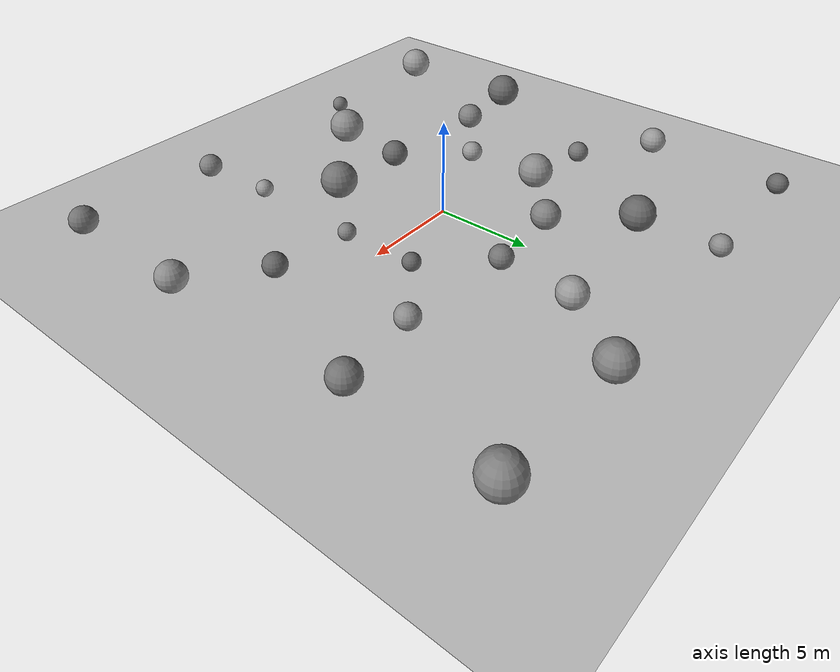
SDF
<?xml version='1.0' encoding='utf-8'?>
<sdf version="1.4">
  <world name="rock_field">
    <!--28 untextured sphere obstacles. Origin and rover spawn area are clear.-->
    <scene>
      <shadows>false</shadows>
    </scene>
    <plugin filename="gz-sim-physics-system" name="gz::sim::systems::Physics" />
    <plugin filename="gz-sim-user-commands-system" name="gz::sim::systems::UserCommands" />
    <plugin filename="gz-sim-scene-broadcaster-system" name="gz::sim::systems::SceneBroadcaster" />
    <plugin filename="gz-sim-sensors-system" name="gz::sim::systems::Sensors">
      <render_engine>ogre2</render_engine>
    </plugin>
    <include>
      <uri>model://sun</uri>
    </include>
    <include>
      <uri>model://ground_plane</uri>
    </include>
    <physics type="dart">
      <max_step_size>0.01</max_step_size>
      <real_time_factor>1</real_time_factor>
      <real_time_update_rate>100</real_time_update_rate>
      <gravity>0 0 -9.81</gravity>
    </physics>
    <model name="sphere_01">
      <static>true</static>
      <pose>4.835 2.003 0.45 0 0 0</pose>
      <link name="sphere">
        <collision name="collision">
          <geometry>
            <sphere>
              <radius>0.45</radius>
            </sphere>
          </geometry>
        </collision>
        <visual name="visual">
          <geometry>
            <sphere>
              <radius>0.45</radius>
            </sphere>
          </geometry>
          <cast_shadows>false</cast_shadows>
          <material>
            <ambient>0.40 0.40 0.40 1</ambient>
            <diffuse>0.40 0.40 0.40 1</diffuse>
            <specular>0 0 0 1</specular>
          </material>
        </visual>
      </link>
    </model>
    <model name="sphere_02">
      <static>true</static>
      <pose>2.108 5.089 0.60 0 0 0</pose>
      <link name="sphere">
        <collision name="collision">
          <geometry>
            <sphere>
              <radius>0.60</radius>
            </sphere>
          </geometry>
        </collision>
        <visual name="visual">
          <geometry>
            <sphere>
              <radius>0.60</radius>
            </sphere>
          </geometry>
          <cast_shadows>false</cast_shadows>
          <material>
            <ambient>0.45 0.45 0.45 1</ambient>
            <diffuse>0.45 0.45 0.45 1</diffuse>
            <specular>0 0 0 1</specular>
          </material>
        </visual>
      </link>
    </model>
    <model name="sphere_03">
      <static>true</static>
      <pose>-1.998 4.824 0.75 0 0 0</pose>
      <link name="sphere">
        <collision name="collision">
          <geometry>
            <sphere>
              <radius>0.75</radius>
            </sphere>
          </geometry>
        </collision>
        <visual name="visual">
          <geometry>
            <sphere>
              <radius>0.75</radius>
            </sphere>
          </geometry>
          <cast_shadows>false</cast_shadows>
          <material>
            <ambient>0.50 0.50 0.50 1</ambient>
            <diffuse>0.50 0.50 0.50 1</diffuse>
            <specular>0 0 0 1</specular>
          </material>
        </visual>
      </link>
    </model>
    <model name="sphere_04">
      <static>true</static>
      <pose>-5.147 2.132 0.90 0 0 0</pose>
      <link name="sphere">
        <collision name="collision">
          <geometry>
            <sphere>
              <radius>0.90</radius>
            </sphere>
          </geometry>
        </collision>
        <visual name="visual">
          <geometry>
            <sphere>
              <radius>0.90</radius>
            </sphere>
          </geometry>
          <cast_shadows>false</cast_shadows>
          <material>
            <ambient>0.55 0.55 0.55 1</ambient>
            <diffuse>0.55 0.55 0.55 1</diffuse>
            <specular>0 0 0 1</specular>
          </material>
        </visual>
      </link>
    </model>
    <model name="sphere_05">
      <static>true</static>
      <pose>-5.265 -2.181 0.55 0 0 0</pose>
      <link name="sphere">
        <collision name="collision">
          <geometry>
            <sphere>
              <radius>0.55</radius>
            </sphere>
          </geometry>
        </collision>
        <visual name="visual">
          <geometry>
            <sphere>
              <radius>0.55</radius>
            </sphere>
          </geometry>
          <cast_shadows>false</cast_shadows>
          <material>
            <ambient>0.60 0.60 0.60 1</ambient>
            <diffuse>0.60 0.60 0.60 1</diffuse>
            <specular>0 0 0 1</specular>
          </material>
        </visual>
      </link>
    </model>
    <model name="sphere_06">
      <static>true</static>
      <pose>-2.167 -5.230 0.70 0 0 0</pose>
      <link name="sphere">
        <collision name="collision">
          <geometry>
            <sphere>
              <radius>0.70</radius>
            </sphere>
          </geometry>
        </collision>
        <visual name="visual">
          <geometry>
            <sphere>
              <radius>0.70</radius>
            </sphere>
          </geometry>
          <cast_shadows>false</cast_shadows>
          <material>
            <ambient>0.40 0.40 0.40 1</ambient>
            <diffuse>0.40 0.40 0.40 1</diffuse>
            <specular>0 0 0 1</specular>
          </material>
        </visual>
      </link>
    </model>
    <model name="sphere_07">
      <static>true</static>
      <pose>2.172 -5.244 0.95 0 0 0</pose>
      <link name="sphere">
        <collision name="collision">
          <geometry>
            <sphere>
              <radius>0.95</radius>
            </sphere>
          </geometry>
        </collision>
        <visual name="visual">
          <geometry>
            <sphere>
              <radius>0.95</radius>
            </sphere>
          </geometry>
          <cast_shadows>false</cast_shadows>
          <material>
            <ambient>0.45 0.45 0.45 1</ambient>
            <diffuse>0.45 0.45 0.45 1</diffuse>
            <specular>0 0 0 1</specular>
          </material>
        </visual>
      </link>
    </model>
    <model name="sphere_08">
      <static>true</static>
      <pose>4.913 -2.035 0.45 0 0 0</pose>
      <link name="sphere">
        <collision name="collision">
          <geometry>
            <sphere>
              <radius>0.45</radius>
            </sphere>
          </geometry>
        </collision>
        <visual name="visual">
          <geometry>
            <sphere>
              <radius>0.45</radius>
            </sphere>
          </geometry>
          <cast_shadows>false</cast_shadows>
          <material>
            <ambient>0.50 0.50 0.50 1</ambient>
            <diffuse>0.50 0.50 0.50 1</diffuse>
            <specular>0 0 0 1</specular>
          </material>
        </visual>
      </link>
    </model>
    <model name="sphere_09">
      <static>true</static>
      <pose>8.031 4.544 0.60 0 0 0</pose>
      <link name="sphere">
        <collision name="collision">
          <geometry>
            <sphere>
              <radius>0.60</radius>
            </sphere>
          </geometry>
        </collision>
        <visual name="visual">
          <geometry>
            <sphere>
              <radius>0.60</radius>
            </sphere>
          </geometry>
          <cast_shadows>false</cast_shadows>
          <material>
            <ambient>0.55 0.55 0.55 1</ambient>
            <diffuse>0.55 0.55 0.55 1</diffuse>
            <specular>0 0 0 1</specular>
          </material>
        </visual>
      </link>
    </model>
    <model name="sphere_10">
      <static>true</static>
      <pose>2.529 9.121 0.75 0 0 0</pose>
      <link name="sphere">
        <collision name="collision">
          <geometry>
            <sphere>
              <radius>0.75</radius>
            </sphere>
          </geometry>
        </collision>
        <visual name="visual">
          <geometry>
            <sphere>
              <radius>0.75</radius>
            </sphere>
          </geometry>
          <cast_shadows>false</cast_shadows>
          <material>
            <ambient>0.60 0.60 0.60 1</ambient>
            <diffuse>0.60 0.60 0.60 1</diffuse>
            <specular>0 0 0 1</specular>
          </material>
        </visual>
      </link>
    </model>
    <model name="sphere_11">
      <static>true</static>
      <pose>-4.742 8.381 0.90 0 0 0</pose>
      <link name="sphere">
        <collision name="collision">
          <geometry>
            <sphere>
              <radius>0.90</radius>
            </sphere>
          </geometry>
        </collision>
        <visual name="visual">
          <geometry>
            <sphere>
              <radius>0.90</radius>
            </sphere>
          </geometry>
          <cast_shadows>false</cast_shadows>
          <material>
            <ambient>0.40 0.40 0.40 1</ambient>
            <diffuse>0.40 0.40 0.40 1</diffuse>
            <specular>0 0 0 1</specular>
          </material>
        </visual>
      </link>
    </model>
    <model name="sphere_12">
      <static>true</static>
      <pose>-8.959 2.485 0.55 0 0 0</pose>
      <link name="sphere">
        <collision name="collision">
          <geometry>
            <sphere>
              <radius>0.55</radius>
            </sphere>
          </geometry>
        </collision>
        <visual name="visual">
          <geometry>
            <sphere>
              <radius>0.55</radius>
            </sphere>
          </geometry>
          <cast_shadows>false</cast_shadows>
          <material>
            <ambient>0.45 0.45 0.45 1</ambient>
            <diffuse>0.45 0.45 0.45 1</diffuse>
            <specular>0 0 0 1</specular>
          </material>
        </visual>
      </link>
    </model>
    <model name="sphere_13">
      <static>true</static>
      <pose>-8.561 -4.843 0.70 0 0 0</pose>
      <link name="sphere">
        <collision name="collision">
          <geometry>
            <sphere>
              <radius>0.70</radius>
            </sphere>
          </geometry>
        </collision>
        <visual name="visual">
          <geometry>
            <sphere>
              <radius>0.70</radius>
            </sphere>
          </geometry>
          <cast_shadows>false</cast_shadows>
          <material>
            <ambient>0.50 0.50 0.50 1</ambient>
            <diffuse>0.50 0.50 0.50 1</diffuse>
            <specular>0 0 0 1</specular>
          </material>
        </visual>
      </link>
    </model>
    <model name="sphere_14">
      <static>true</static>
      <pose>-2.596 -9.360 0.95 0 0 0</pose>
      <link name="sphere">
        <collision name="collision">
          <geometry>
            <sphere>
              <radius>0.95</radius>
            </sphere>
          </geometry>
        </collision>
        <visual name="visual">
          <geometry>
            <sphere>
              <radius>0.95</radius>
            </sphere>
          </geometry>
          <cast_shadows>false</cast_shadows>
          <material>
            <ambient>0.55 0.55 0.55 1</ambient>
            <diffuse>0.55 0.55 0.55 1</diffuse>
            <specular>0 0 0 1</specular>
          </material>
        </visual>
      </link>
    </model>
    <model name="sphere_15">
      <static>true</static>
      <pose>4.683 -8.277 0.45 0 0 0</pose>
      <link name="sphere">
        <collision name="collision">
          <geometry>
            <sphere>
              <radius>0.45</radius>
            </sphere>
          </geometry>
        </collision>
        <visual name="visual">
          <geometry>
            <sphere>
              <radius>0.45</radius>
            </sphere>
          </geometry>
          <cast_shadows>false</cast_shadows>
          <material>
            <ambient>0.60 0.60 0.60 1</ambient>
            <diffuse>0.60 0.60 0.60 1</diffuse>
            <specular>0 0 0 1</specular>
          </material>
        </visual>
      </link>
    </model>
    <model name="sphere_16">
      <static>true</static>
      <pose>9.047 -2.509 0.60 0 0 0</pose>
      <link name="sphere">
        <collision name="collision">
          <geometry>
            <sphere>
              <radius>0.60</radius>
            </sphere>
          </geometry>
        </collision>
        <visual name="visual">
          <geometry>
            <sphere>
              <radius>0.60</radius>
            </sphere>
          </geometry>
          <cast_shadows>false</cast_shadows>
          <material>
            <ambient>0.40 0.40 0.40 1</ambient>
            <diffuse>0.40 0.40 0.40 1</diffuse>
            <specular>0 0 0 1</specular>
          </material>
        </visual>
      </link>
    </model>
    <model name="sphere_17">
      <static>true</static>
      <pose>12.338 5.111 0.75 0 0 0</pose>
      <link name="sphere">
        <collision name="collision">
          <geometry>
            <sphere>
              <radius>0.75</radius>
            </sphere>
          </geometry>
        </collision>
        <visual name="visual">
          <geometry>
            <sphere>
              <radius>0.75</radius>
            </sphere>
          </geometry>
          <cast_shadows>false</cast_shadows>
          <material>
            <ambient>0.45 0.45 0.45 1</ambient>
            <diffuse>0.45 0.45 0.45 1</diffuse>
            <specular>0 0 0 1</specular>
          </material>
        </visual>
      </link>
    </model>
    <model name="sphere_18">
      <static>true</static>
      <pose>5.267 12.716 0.90 0 0 0</pose>
      <link name="sphere">
        <collision name="collision">
          <geometry>
            <sphere>
              <radius>0.90</radius>
            </sphere>
          </geometry>
        </collision>
        <visual name="visual">
          <geometry>
            <sphere>
              <radius>0.90</radius>
            </sphere>
          </geometry>
          <cast_shadows>false</cast_shadows>
          <material>
            <ambient>0.50 0.50 0.50 1</ambient>
            <diffuse>0.50 0.50 0.50 1</diffuse>
            <specular>0 0 0 1</specular>
          </material>
        </visual>
      </link>
    </model>
    <model name="sphere_19">
      <static>true</static>
      <pose>-5.187 12.522 0.55 0 0 0</pose>
      <link name="sphere">
        <collision name="collision">
          <geometry>
            <sphere>
              <radius>0.55</radius>
            </sphere>
          </geometry>
        </collision>
        <visual name="visual">
          <geometry>
            <sphere>
              <radius>0.55</radius>
            </sphere>
          </geometry>
          <cast_shadows>false</cast_shadows>
          <material>
            <ambient>0.55 0.55 0.55 1</ambient>
            <diffuse>0.55 0.55 0.55 1</diffuse>
            <specular>0 0 0 1</specular>
          </material>
        </visual>
      </link>
    </model>
    <model name="sphere_20">
      <static>true</static>
      <pose>-12.609 5.223 0.70 0 0 0</pose>
      <link name="sphere">
        <collision name="collision">
          <geometry>
            <sphere>
              <radius>0.70</radius>
            </sphere>
          </geometry>
        </collision>
        <visual name="visual">
          <geometry>
            <sphere>
              <radius>0.70</radius>
            </sphere>
          </geometry>
          <cast_shadows>false</cast_shadows>
          <material>
            <ambient>0.60 0.60 0.60 1</ambient>
            <diffuse>0.60 0.60 0.60 1</diffuse>
            <specular>0 0 0 1</specular>
          </material>
        </visual>
      </link>
    </model>
    <model name="sphere_21">
      <static>true</static>
      <pose>-12.422 -5.145 0.95 0 0 0</pose>
      <link name="sphere">
        <collision name="collision">
          <geometry>
            <sphere>
              <radius>0.95</radius>
            </sphere>
          </geometry>
        </collision>
        <visual name="visual">
          <geometry>
            <sphere>
              <radius>0.95</radius>
            </sphere>
          </geometry>
          <cast_shadows>false</cast_shadows>
          <material>
            <ambient>0.40 0.40 0.40 1</ambient>
            <diffuse>0.40 0.40 0.40 1</diffuse>
            <specular>0 0 0 1</specular>
          </material>
        </visual>
      </link>
    </model>
    <model name="sphere_22">
      <static>true</static>
      <pose>-5.189 -12.528 0.45 0 0 0</pose>
      <link name="sphere">
        <collision name="collision">
          <geometry>
            <sphere>
              <radius>0.45</radius>
            </sphere>
          </geometry>
        </collision>
        <visual name="visual">
          <geometry>
            <sphere>
              <radius>0.45</radius>
            </sphere>
          </geometry>
          <cast_shadows>false</cast_shadows>
          <material>
            <ambient>0.45 0.45 0.45 1</ambient>
            <diffuse>0.45 0.45 0.45 1</diffuse>
            <specular>0 0 0 1</specular>
          </material>
        </visual>
      </link>
    </model>
    <model name="sphere_23">
      <static>true</static>
      <pose>5.063 -12.224 0.60 0 0 0</pose>
      <link name="sphere">
        <collision name="collision">
          <geometry>
            <sphere>
              <radius>0.60</radius>
            </sphere>
          </geometry>
        </collision>
        <visual name="visual">
          <geometry>
            <sphere>
              <radius>0.60</radius>
            </sphere>
          </geometry>
          <cast_shadows>false</cast_shadows>
          <material>
            <ambient>0.50 0.50 0.50 1</ambient>
            <diffuse>0.50 0.50 0.50 1</diffuse>
            <specular>0 0 0 1</specular>
          </material>
        </visual>
      </link>
    </model>
    <model name="sphere_24">
      <static>true</static>
      <pose>12.634 -5.233 0.75 0 0 0</pose>
      <link name="sphere">
        <collision name="collision">
          <geometry>
            <sphere>
              <radius>0.75</radius>
            </sphere>
          </geometry>
        </collision>
        <visual name="visual">
          <geometry>
            <sphere>
              <radius>0.75</radius>
            </sphere>
          </geometry>
          <cast_shadows>false</cast_shadows>
          <material>
            <ambient>0.55 0.55 0.55 1</ambient>
            <diffuse>0.55 0.55 0.55 1</diffuse>
            <specular>0 0 0 1</specular>
          </material>
        </visual>
      </link>
    </model>
    <model name="sphere_25">
      <static>true</static>
      <pose>-12.500 -12.500 0.90 0 0 0</pose>
      <link name="sphere">
        <collision name="collision">
          <geometry>
            <sphere>
              <radius>0.90</radius>
            </sphere>
          </geometry>
        </collision>
        <visual name="visual">
          <geometry>
            <sphere>
              <radius>0.90</radius>
            </sphere>
          </geometry>
          <cast_shadows>false</cast_shadows>
          <material>
            <ambient>0.60 0.60 0.60 1</ambient>
            <diffuse>0.60 0.60 0.60 1</diffuse>
            <specular>0 0 0 1</specular>
          </material>
        </visual>
      </link>
    </model>
    <model name="sphere_26">
      <static>true</static>
      <pose>-12.500 12.500 0.55 0 0 0</pose>
      <link name="sphere">
        <collision name="collision">
          <geometry>
            <sphere>
              <radius>0.55</radius>
            </sphere>
          </geometry>
        </collision>
        <visual name="visual">
          <geometry>
            <sphere>
              <radius>0.55</radius>
            </sphere>
          </geometry>
          <cast_shadows>false</cast_shadows>
          <material>
            <ambient>0.40 0.40 0.40 1</ambient>
            <diffuse>0.40 0.40 0.40 1</diffuse>
            <specular>0 0 0 1</specular>
          </material>
        </visual>
      </link>
    </model>
    <model name="sphere_27">
      <static>true</static>
      <pose>12.500 -12.500 0.70 0 0 0</pose>
      <link name="sphere">
        <collision name="collision">
          <geometry>
            <sphere>
              <radius>0.70</radius>
            </sphere>
          </geometry>
        </collision>
        <visual name="visual">
          <geometry>
            <sphere>
              <radius>0.70</radius>
            </sphere>
          </geometry>
          <cast_shadows>false</cast_shadows>
          <material>
            <ambient>0.45 0.45 0.45 1</ambient>
            <diffuse>0.45 0.45 0.45 1</diffuse>
            <specular>0 0 0 1</specular>
          </material>
        </visual>
      </link>
    </model>
    <model name="sphere_28">
      <static>true</static>
      <pose>12.500 12.500 0.95 0 0 0</pose>
      <link name="sphere">
        <collision name="collision">
          <geometry>
            <sphere>
              <radius>0.95</radius>
            </sphere>
          </geometry>
        </collision>
        <visual name="visual">
          <geometry>
            <sphere>
              <radius>0.95</radius>
            </sphere>
          </geometry>
          <cast_shadows>false</cast_shadows>
          <material>
            <ambient>0.50 0.50 0.50 1</ambient>
            <diffuse>0.50 0.50 0.50 1</diffuse>
            <specular>0 0 0 1</specular>
          </material>
        </visual>
      </link>
    </model>
  </world>
</sdf>
